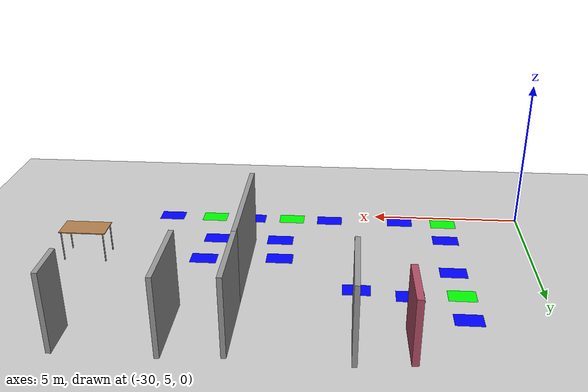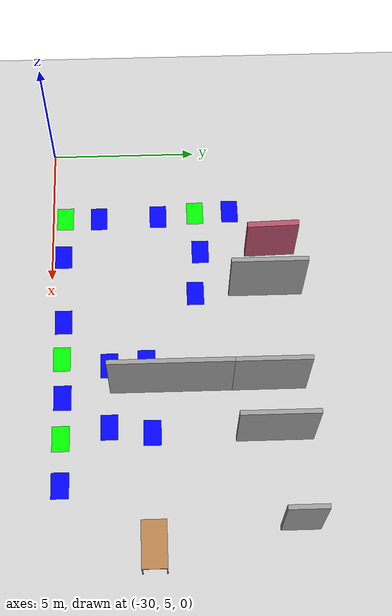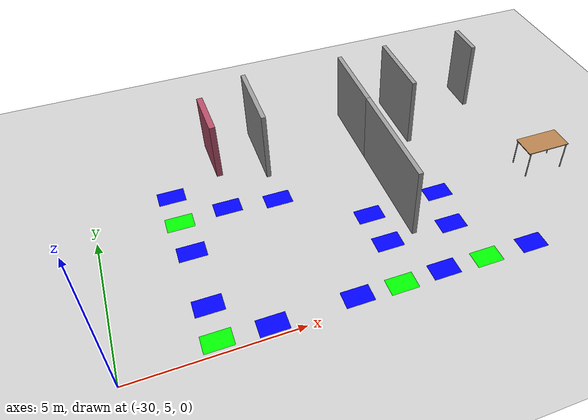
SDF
<sdf version="1.6">
 <world name="default">
  <model name="ground_plane">
   <pose>0 0 0.001 0 -0 0</pose>
   <static>1</static>
   <link name="link">
    <collision name="collision">
     <geometry><plane><normal>0 0 1</normal><size>100 100</size></plane></geometry>
     <surface><friction><ode><mu>100</mu><mu2>50</mu2></ode></friction></surface>
    </collision>
    <visual name="visual">
     <cast_shadows>0</cast_shadows>
     <geometry><plane><normal>0 0 1</normal><size>100 100</size></plane></geometry>
     <material>
      <script><uri>file://media/materials/scripts/gazebo.material</uri><name>Gazebo/Grey</name></script>
     </material>
    </visual>
   </link>
  </model>
  <model name="table_2">
   <static>1</static>
   <link name="link">
    <collision name="surface">
     <pose>0 0 1 0 -0 0</pose>
     <geometry><box><size>1.5 0.8 0.03</size></box></geometry>
     <surface><friction><ode><mu>0.6</mu><mu2>0.6</mu2></ode></friction></surface>
    </collision>
    <visual name="visual1">
     <pose>0 0 1 0 -0 0</pose>
     <geometry><box><size>1.5 0.8 0.03</size></box></geometry>
     <material>
      <script><uri>file://media/materials/scripts/gazebo.material</uri><name>Gazebo/Wood</name></script>
     </material>
    </visual>
    <collision name="front_left_leg">
     <pose>0.68 0.38 0.5 0 -0 0</pose>
     <geometry><cylinder><radius>0.02</radius><length>1</length></cylinder></geometry>
    </collision>
    <visual name="front_left_leg">
     <pose>0.68 0.38 0.5 0 -0 0</pose>
     <geometry><cylinder><radius>0.02</radius><length>1</length></cylinder></geometry>
     <material>
      <script><uri>file://media/materials/scripts/gazebo.material</uri><name>Gazebo/Grey</name></script>
     </material>
    </visual>
    <collision name="front_right_leg">
     <pose>0.68 -0.38 0.5 0 -0 0</pose>
     <geometry><cylinder><radius>0.02</radius><length>1</length></cylinder></geometry>
    </collision>
    <visual name="front_right_leg">
     <pose>0.68 -0.38 0.5 0 -0 0</pose>
     <geometry><cylinder><radius>0.02</radius><length>1</length></cylinder></geometry>
     <material>
      <script><uri>file://media/materials/scripts/gazebo.material</uri><name>Gazebo/Grey</name></script>
     </material>
    </visual>
    <collision name="back_right_leg">
     <pose>-0.68 -0.38 0.5 0 -0 0</pose>
     <geometry><cylinder><radius>0.02</radius><length>1</length></cylinder></geometry>
    </collision>
    <visual name="back_right_leg">
     <pose>-0.68 -0.38 0.5 0 -0 0</pose>
     <geometry><cylinder><radius>0.02</radius><length>1</length></cylinder></geometry>
     <material>
      <script><uri>file://media/materials/scripts/gazebo.material</uri><name>Gazebo/Grey</name></script>
     </material>
    </visual>
    <collision name="back_left_leg">
     <pose>-0.68 0.38 0.5 0 -0 0</pose>
     <geometry><cylinder><radius>0.02</radius><length>1</length></cylinder></geometry>
    </collision>
    <visual name="back_left_leg">
     <pose>-0.68 0.38 0.5 0 -0 0</pose>
     <geometry><cylinder><radius>0.02</radius><length>1</length></cylinder></geometry>
     <material>
      <script><uri>file://media/materials/scripts/gazebo.material</uri><name>Gazebo/Grey</name></script>
     </material>
    </visual>
   </link>
   <pose>-15.5399 8.3596 0.001 0 -0 0</pose>
  </model>
  <model name="intersection_0">
   <link name="link">
    <pose>0 0 0.001 0 -0 0</pose>
    <inertial>
     <mass>0.0352517</mass>
     <inertia>
      <ixx>0.000997067</ixx>
      <ixy>0</ixy>
      <ixz>0</ixz>
      <iyy>0.00220147</iyy>
      <iyz>0</iyz>
      <izz>0.0031692</izz>
     </inertia>
     <pose>0 0 0.001 0 -0 0</pose>
    </inertial>
    <visual name="visual">
     <geometry><box><size>0.862743 0.578289 1e-06</size></box></geometry>
     <material>
      <script><name>Gazebo/Grey</name><uri>file://media/materials/scripts/gazebo.material</uri></script>
      <ambient>0 0 1 1</ambient>
      <diffuse>0 0 1 1</diffuse>
      <specular>0 0 1 1</specular>
      <emissive>0 0 1 1</emissive>
      <shader type="vertex"><normal_map>__default__</normal_map></shader>
     </material>
     <pose>0 0 0.001 0 -0 0</pose>
    </visual>
    <collision name="collision">
     <pose>0 0 0.001 0 -0 0</pose>
     <geometry><box><size>0.862743 0.578289 0.000477</size></box></geometry>
     <surface>
      <friction>
       <ode><mu>1</mu><mu2>1</mu2><fdir1>0 0 0</fdir1><slip1>0</slip1><slip2>0</slip2></ode>
       <torsional>
        <coefficient>1</coefficient>
        <patch_radius>0</patch_radius>
        <surface_radius>0</surface_radius>
        <use_patch_radius>1</use_patch_radius>
        <ode><slip>0</slip></ode>
       </torsional>
      </friction>
      <bounce><restitution_coefficient>0</restitution_coefficient><threshold>1e+06</threshold></bounce>
      <contact>
       <collide_without_contact>0</collide_without_contact>
       <collide_without_contact_bitmask>1</collide_without_contact_bitmask>
       <collide_bitmask>1</collide_bitmask>
       <ode>
        <soft_cfm>0</soft_cfm>
        <soft_erp>0.2</soft_erp>
        <kp>1e+13</kp>
        <kd>1</kd>
        <max_vel>0.01</max_vel>
        <min_depth>0</min_depth>
       </ode>
       <bullet>
        <split_impulse>1</split_impulse>
        <split_impulse_penetration_threshold>-0.01</split_impulse_penetration_threshold>
        <soft_cfm>0</soft_cfm>
        <soft_erp>0.2</soft_erp>
        <kp>1e+13</kp>
        <kd>1</kd>
       </bullet>
      </contact>
     </surface>
    </collision>
   </link>
   <static>1</static>
   <pose>-25.9503 10.1367 0 0 -0 0</pose>
  </model>
  <model name="intersection_1">
   <link name="link">
    <pose>0 0 0.001 0 -0 0</pose>
    <inertial>
     <mass>0.0352517</mass>
     <inertia>
      <ixx>0.000997067</ixx>
      <ixy>0</ixy>
      <ixz>0</ixz>
      <iyy>0.00220147</iyy>
      <iyz>0</iyz>
      <izz>0.0031692</izz>
     </inertia>
     <pose>0 0 0.001 0 -0 0</pose>
    </inertial>
    <visual name="visual">
     <geometry><box><size>0.862743 0.578289 1e-06</size></box></geometry>
     <material>
      <script><name>Gazebo/Grey</name><uri>file://media/materials/scripts/gazebo.material</uri></script>
      <ambient>0 0 1 1</ambient>
      <diffuse>0 0 1 1</diffuse>
      <specular>0 0 1 1</specular>
      <emissive>0 0 1 1</emissive>
      <shader type="vertex"><normal_map>__default__</normal_map></shader>
     </material>
     <pose>0 0 0.001 0 -0 0</pose>
    </visual>
    <collision name="collision">
     <pose>0 0 0.001 0 -0 0</pose>
     <geometry><box><size>0.862743 0.578289 0.000477</size></box></geometry>
     <surface>
      <friction>
       <ode><mu>1</mu><mu2>1</mu2><fdir1>0 0 0</fdir1><slip1>0</slip1><slip2>0</slip2></ode>
       <torsional>
        <coefficient>1</coefficient>
        <patch_radius>0</patch_radius>
        <surface_radius>0</surface_radius>
        <use_patch_radius>1</use_patch_radius>
        <ode><slip>0</slip></ode>
       </torsional>
      </friction>
      <bounce><restitution_coefficient>0</restitution_coefficient><threshold>1e+06</threshold></bounce>
      <contact>
       <collide_without_contact>0</collide_without_contact>
       <collide_without_contact_bitmask>1</collide_without_contact_bitmask>
       <collide_bitmask>1</collide_bitmask>
       <ode>
        <soft_cfm>0</soft_cfm>
        <soft_erp>0.2</soft_erp>
        <kp>1e+13</kp>
        <kd>1</kd>
        <max_vel>0.01</max_vel>
        <min_depth>0</min_depth>
       </ode>
       <bullet>
        <split_impulse>1</split_impulse>
        <split_impulse_penetration_threshold>-0.01</split_impulse_penetration_threshold>
        <soft_cfm>0</soft_cfm>
        <soft_erp>0.2</soft_erp>
        <kp>1e+13</kp>
        <kd>1</kd>
       </bullet>
      </contact>
     </surface>
    </collision>
   </link>
   <static>1</static>
   <pose>-21.7477 6.96498 0 0 -0 0</pose>
  </model>
  <model name="intersection_2">
   <link name="link">
    <pose>0 0 0.001 0 -0 0</pose>
    <inertial>
     <mass>0.0352517</mass>
     <inertia>
      <ixx>0.000997067</ixx>
      <ixy>0</ixy>
      <ixz>0</ixz>
      <iyy>0.00220147</iyy>
      <iyz>0</iyz>
      <izz>0.0031692</izz>
     </inertia>
     <pose>0 0 0.001 0 -0 0</pose>
    </inertial>
    <visual name="visual">
     <geometry><box><size>0.862743 0.578289 1e-06</size></box></geometry>
     <material>
      <script><name>Gazebo/Grey</name><uri>file://media/materials/scripts/gazebo.material</uri></script>
      <ambient>0 0 1 1</ambient>
      <diffuse>0 0 1 1</diffuse>
      <specular>0 0 1 1</specular>
      <emissive>0 0 1 1</emissive>
      <shader type="vertex"><normal_map>__default__</normal_map></shader>
     </material>
     <pose>0 0 0.001 0 -0 0</pose>
    </visual>
    <collision name="collision">
     <pose>0 0 0.001 0 -0 0</pose>
     <geometry><box><size>0.862743 0.578289 0.000477</size></box></geometry>
     <surface>
      <friction>
       <ode><mu>1</mu><mu2>1</mu2><fdir1>0 0 0</fdir1><slip1>0</slip1><slip2>0</slip2></ode>
       <torsional>
        <coefficient>1</coefficient>
        <patch_radius>0</patch_radius>
        <surface_radius>0</surface_radius>
        <use_patch_radius>1</use_patch_radius>
        <ode><slip>0</slip></ode>
       </torsional>
      </friction>
      <bounce><restitution_coefficient>0</restitution_coefficient><threshold>1e+06</threshold></bounce>
      <contact>
       <collide_without_contact>0</collide_without_contact>
       <collide_without_contact_bitmask>1</collide_without_contact_bitmask>
       <collide_bitmask>1</collide_bitmask>
       <ode>
        <soft_cfm>0</soft_cfm>
        <soft_erp>0.2</soft_erp>
        <kp>1e+13</kp>
        <kd>1</kd>
        <max_vel>0.01</max_vel>
        <min_depth>0</min_depth>
       </ode>
       <bullet>
        <split_impulse>1</split_impulse>
        <split_impulse_penetration_threshold>-0.01</split_impulse_penetration_threshold>
        <soft_cfm>0</soft_cfm>
        <soft_erp>0.2</soft_erp>
        <kp>1e+13</kp>
        <kd>1</kd>
       </bullet>
      </contact>
     </surface>
    </collision>
   </link>
   <static>1</static>
   <pose>-25.8621 5.38131 0 0 -0 0</pose>
  </model>
  <model name="intersection_10">
   <link name="link">
    <pose>0 0 0.001 0 -0 0</pose>
    <inertial>
     <mass>0.0352517</mass>
     <inertia>
      <ixx>0.000997067</ixx>
      <ixy>0</ixy>
      <ixz>0</ixz>
      <iyy>0.00220147</iyy>
      <iyz>0</iyz>
      <izz>0.0031692</izz>
     </inertia>
     <pose>0 0 0.001 0 -0 0</pose>
    </inertial>
    <visual name="visual">
     <geometry><box><size>0.862743 0.578289 1e-06</size></box></geometry>
     <material>
      <script><name>Gazebo/Grey</name><uri>file://media/materials/scripts/gazebo.material</uri></script>
      <ambient>0 0 1 1</ambient>
      <diffuse>0 0 1 1</diffuse>
      <specular>0 0 1 1</specular>
      <emissive>0 0 1 1</emissive>
      <shader type="vertex"><normal_map>__default__</normal_map></shader>
     </material>
     <pose>0 0 0.001 0 -0 0</pose>
    </visual>
    <collision name="collision">
     <pose>0 0 0.001 0 -0 0</pose>
     <geometry><box><size>0.862743 0.578289 0.000477</size></box></geometry>
     <surface>
      <friction>
       <ode><mu>1</mu><mu2>1</mu2><fdir1>0 0 0</fdir1><slip1>0</slip1><slip2>0</slip2></ode>
       <torsional>
        <coefficient>1</coefficient>
        <patch_radius>0</patch_radius>
        <surface_radius>0</surface_radius>
        <use_patch_radius>1</use_patch_radius>
        <ode><slip>0</slip></ode>
       </torsional>
      </friction>
      <bounce><restitution_coefficient>0</restitution_coefficient><threshold>1e+06</threshold></bounce>
      <contact>
       <collide_without_contact>0</collide_without_contact>
       <collide_without_contact_bitmask>1</collide_without_contact_bitmask>
       <collide_bitmask>1</collide_bitmask>
       <ode>
        <soft_cfm>0</soft_cfm>
        <soft_erp>0.2</soft_erp>
        <kp>1e+13</kp>
        <kd>1</kd>
        <max_vel>0.01</max_vel>
        <min_depth>0</min_depth>
       </ode>
       <bullet>
        <split_impulse>1</split_impulse>
        <split_impulse_penetration_threshold>-0.01</split_impulse_penetration_threshold>
        <soft_cfm>0</soft_cfm>
        <soft_erp>0.2</soft_erp>
        <kp>1e+13</kp>
        <kd>1</kd>
       </bullet>
      </contact>
     </surface>
    </collision>
   </link>
   <static>1</static>
   <pose>-19.5888 6.96185 0 0 -0 0</pose>
  </model>
  <model name="doorOutside_2_clone">
   <link name="link">
    <pose>0.155539 -0.366282 0.216958 0 -0 0</pose>
    <inertial>
     <mass>2.13199</mass>
     <inertia>
      <ixx>0.452656</ixx>
      <ixy>0</ixy>
      <ixz>0</ixz>
      <iyy>0.796738</iyy>
      <iyz>0</iyz>
      <izz>0.699414</izz>
     </inertia>
     <pose>0 0 0.001 0 -0 0</pose>
    </inertial>
    <visual name="visual">
     <geometry><box><size>1.71368 0.198843 2.05986</size></box></geometry>
     <material>
      <script><name>Gazebo/Grey</name><uri>file://media/materials/scripts/gazebo.material</uri></script>
      <ambient>0.7 0.3 0.4 1</ambient>
      <diffuse>0.7 0.7 0.7 1</diffuse>
      <specular>0.01 0.01 0.01 1</specular>
      <emissive>0 0 0 1</emissive>
      <shader type="vertex"><normal_map>__default__</normal_map></shader>
      <lighting>0</lighting>
     </material>
     <pose>0 0 0.001 0 -0 0</pose>
    </visual>
    <collision name="collision">
     <pose>0 0 0.001 0 -0 0</pose>
     <geometry><box><size>1.71368 0.198843 2.05986</size></box></geometry>
     <surface>
      <friction>
       <ode><mu>1</mu><mu2>1</mu2><fdir1>0 0 0</fdir1><slip1>0</slip1><slip2>0</slip2></ode>
       <torsional>
        <coefficient>1</coefficient>
        <patch_radius>0</patch_radius>
        <surface_radius>0</surface_radius>
        <use_patch_radius>1</use_patch_radius>
        <ode><slip>0</slip></ode>
       </torsional>
      </friction>
      <bounce><restitution_coefficient>0</restitution_coefficient><threshold>1e+06</threshold></bounce>
      <contact>
       <collide_without_contact>0</collide_without_contact>
       <collide_without_contact_bitmask>1</collide_without_contact_bitmask>
       <collide_bitmask>1</collide_bitmask>
       <ode>
        <soft_cfm>0</soft_cfm>
        <soft_erp>0.2</soft_erp>
        <kp>1e+13</kp>
        <kd>1</kd>
        <max_vel>0.01</max_vel>
        <min_depth>0</min_depth>
       </ode>
       <bullet>
        <split_impulse>1</split_impulse>
        <split_impulse_penetration_threshold>-0.01</split_impulse_penetration_threshold>
        <soft_cfm>0</soft_cfm>
        <soft_erp>0.2</soft_erp>
        <kp>1e+13</kp>
        <kd>1</kd>
       </bullet>
      </contact>
     </surface>
    </collision>
   </link>
   <static>0</static>
   <pose>-26.2144 12.3643 0.811972 0 -0 1.5983</pose>
  </model>
  <model name="corridor_1">
   <link name="link">
    <pose>0 0 0.001 0 -0 0</pose>
    <inertial>
     <mass>0.0352517</mass>
     <inertia>
      <ixx>0.00099707</ixx>
      <ixy>0</ixy>
      <ixz>0</ixz>
      <iyy>0.00220147</iyy>
      <iyz>0</iyz>
      <izz>0.0031692</izz>
     </inertia>
     <pose>0 0 0.001 0 -0 0</pose>
    </inertial>
    <visual name="visual">
     <geometry><box><size>0.862743 0.578289 1e-06</size></box></geometry>
     <material>
      <script><name>Gazebo/Grey</name><uri>file://media/materials/scripts/gazebo.material</uri></script>
      <ambient>0 1 0 1</ambient>
      <diffuse>0 1 0 1</diffuse>
      <specular>0 1 0 1</specular>
      <emissive>0 1 0 1</emissive>
      <shader type="vertex"><normal_map>__default__</normal_map></shader>
     </material>
     <pose>0 0 0.001 0 -0 0</pose>
    </visual>
    <collision name="collision">
     <pose>0 0 0.001 0 -0 0</pose>
     <geometry><box><size>0.862743 0.578289 0.000477</size></box></geometry>
     <surface>
      <friction>
       <ode><mu>1</mu><mu2>1</mu2><fdir1>0 0 0</fdir1><slip1>0</slip1><slip2>0</slip2></ode>
       <torsional>
        <coefficient>1</coefficient>
        <patch_radius>0</patch_radius>
        <surface_radius>0</surface_radius>
        <use_patch_radius>1</use_patch_radius>
        <ode><slip>0</slip></ode>
       </torsional>
      </friction>
      <bounce><restitution_coefficient>0</restitution_coefficient><threshold>1e+06</threshold></bounce>
      <contact>
       <collide_without_contact>0</collide_without_contact>
       <collide_without_contact_bitmask>1</collide_without_contact_bitmask>
       <collide_bitmask>1</collide_bitmask>
       <ode>
        <soft_cfm>0</soft_cfm>
        <soft_erp>0.2</soft_erp>
        <kp>1e+13</kp>
        <kd>1</kd>
        <max_vel>0.01</max_vel>
        <min_depth>0</min_depth>
       </ode>
       <bullet>
        <split_impulse>1</split_impulse>
        <split_impulse_penetration_threshold>-0.01</split_impulse_penetration_threshold>
        <soft_cfm>0</soft_cfm>
        <soft_erp>0.2</soft_erp>
        <kp>1e+13</kp>
        <kd>1</kd>
       </bullet>
      </contact>
     </surface>
    </collision>
   </link>
   <static>1</static>
   <pose>-27.5054 9.99894 0 0 -0 0</pose>
  </model>
  <model name="corridor_2">
   <link name="link">
    <pose>0 0 0.001 0 -0 0</pose>
    <inertial>
     <mass>0.0352517</mass>
     <inertia>
      <ixx>0.00099707</ixx>
      <ixy>0</ixy>
      <ixz>0</ixz>
      <iyy>0.00220147</iyy>
      <iyz>0</iyz>
      <izz>0.0031692</izz>
     </inertia>
     <pose>0 0 0.001 0 -0 0</pose>
    </inertial>
    <visual name="visual">
     <geometry><box><size>0.862743 0.578289 1e-06</size></box></geometry>
     <material>
      <script><name>Gazebo/Grey</name><uri>file://media/materials/scripts/gazebo.material</uri></script>
      <ambient>0 1 0 1</ambient>
      <diffuse>0 1 0 1</diffuse>
      <specular>0 1 0 1</specular>
      <emissive>0 1 0 1</emissive>
      <shader type="vertex"><normal_map>__default__</normal_map></shader>
     </material>
     <pose>0 0 0.001 0 -0 0</pose>
    </visual>
    <collision name="collision">
     <pose>0 0 0.001 0 -0 0</pose>
     <geometry><box><size>0.862743 0.578289 0.000477</size></box></geometry>
     <surface>
      <friction>
       <ode><mu>1</mu><mu2>1</mu2><fdir1>0 0 0</fdir1><slip1>0</slip1><slip2>0</slip2></ode>
       <torsional>
        <coefficient>1</coefficient>
        <patch_radius>0</patch_radius>
        <surface_radius>0</surface_radius>
        <use_patch_radius>1</use_patch_radius>
        <ode><slip>0</slip></ode>
       </torsional>
      </friction>
      <bounce><restitution_coefficient>0</restitution_coefficient><threshold>1e+06</threshold></bounce>
      <contact>
       <collide_without_contact>0</collide_without_contact>
       <collide_without_contact_bitmask>1</collide_without_contact_bitmask>
       <collide_bitmask>1</collide_bitmask>
       <ode>
        <soft_cfm>0</soft_cfm>
        <soft_erp>0.2</soft_erp>
        <kp>1e+13</kp>
        <kd>1</kd>
        <max_vel>0.01</max_vel>
        <min_depth>0</min_depth>
       </ode>
       <bullet>
        <split_impulse>1</split_impulse>
        <split_impulse_penetration_threshold>-0.01</split_impulse_penetration_threshold>
        <soft_cfm>0</soft_cfm>
        <soft_erp>0.2</soft_erp>
        <kp>1e+13</kp>
        <kd>1</kd>
       </bullet>
      </contact>
     </surface>
    </collision>
   </link>
   <static>1</static>
   <pose>-27.3839 5.42148 0 0 -0 0</pose>
  </model>
  <model name="corridor_20">
   <link name="link">
    <pose>0 0 0.001 0 -0 0</pose>
    <inertial>
     <mass>0.0352517</mass>
     <inertia>
      <ixx>0.00099707</ixx>
      <ixy>0</ixy>
      <ixz>0</ixz>
      <iyy>0.00220147</iyy>
      <iyz>0</iyz>
      <izz>0.0031692</izz>
     </inertia>
     <pose>0 0 0.001 0 -0 0</pose>
    </inertial>
    <visual name="visual">
     <geometry><box><size>0.862743 0.578289 1e-06</size></box></geometry>
     <material>
      <script><name>Gazebo/Grey</name><uri>file://media/materials/scripts/gazebo.material</uri></script>
      <ambient>0 1 0 1</ambient>
      <diffuse>0 1 0 1</diffuse>
      <specular>0 1 0 1</specular>
      <emissive>0 1 0 1</emissive>
      <shader type="vertex"><normal_map>__default__</normal_map></shader>
     </material>
     <pose>0 0 0.001 0 -0 0</pose>
    </visual>
    <collision name="collision">
     <pose>0 0 0.001 0 -0 0</pose>
     <geometry><box><size>0.862743 0.578289 0.000477</size></box></geometry>
     <surface>
      <friction>
       <ode><mu>1</mu><mu2>1</mu2><fdir1>0 0 0</fdir1><slip1>0</slip1><slip2>0</slip2></ode>
       <torsional>
        <coefficient>1</coefficient>
        <patch_radius>0</patch_radius>
        <surface_radius>0</surface_radius>
        <use_patch_radius>1</use_patch_radius>
        <ode><slip>0</slip></ode>
       </torsional>
      </friction>
      <bounce><restitution_coefficient>0</restitution_coefficient><threshold>1e+06</threshold></bounce>
      <contact>
       <collide_without_contact>0</collide_without_contact>
       <collide_without_contact_bitmask>1</collide_without_contact_bitmask>
       <collide_bitmask>1</collide_bitmask>
       <ode>
        <soft_cfm>0</soft_cfm>
        <soft_erp>0.2</soft_erp>
        <kp>1e+13</kp>
        <kd>1</kd>
        <max_vel>0.01</max_vel>
        <min_depth>0</min_depth>
       </ode>
       <bullet>
        <split_impulse>1</split_impulse>
        <split_impulse_penetration_threshold>-0.01</split_impulse_penetration_threshold>
        <soft_cfm>0</soft_cfm>
        <soft_erp>0.2</soft_erp>
        <kp>1e+13</kp>
        <kd>1</kd>
       </bullet>
      </contact>
     </surface>
    </collision>
   </link>
   <static>1</static>
   <pose>-19.241 5.38665 0 0 -0 0</pose>
  </model>
  <model name="corridor_21">
   <link name="link">
    <pose>0 0 0.001 0 -0 0</pose>
    <inertial>
     <mass>0.0352517</mass>
     <inertia>
      <ixx>0.00099707</ixx>
      <ixy>0</ixy>
      <ixz>0</ixz>
      <iyy>0.00220147</iyy>
      <iyz>0</iyz>
      <izz>0.0031692</izz>
     </inertia>
     <pose>0 0 0.001 0 -0 0</pose>
    </inertial>
    <visual name="visual">
     <geometry><box><size>0.862743 0.578289 1e-06</size></box></geometry>
     <material>
      <script><name>Gazebo/Grey</name><uri>file://media/materials/scripts/gazebo.material</uri></script>
      <ambient>0 1 0 1</ambient>
      <diffuse>0 1 0 1</diffuse>
      <specular>0 1 0 1</specular>
      <emissive>0 1 0 1</emissive>
      <shader type="vertex"><normal_map>__default__</normal_map></shader>
     </material>
     <pose>0 0 0.001 0 -0 0</pose>
    </visual>
    <collision name="collision">
     <pose>0 0 0.001 0 -0 0</pose>
     <geometry><box><size>0.862743 0.578289 0.000477</size></box></geometry>
     <surface>
      <friction>
       <ode><mu>1</mu><mu2>1</mu2><fdir1>0 0 0</fdir1><slip1>0</slip1><slip2>0</slip2></ode>
       <torsional>
        <coefficient>1</coefficient>
        <patch_radius>0</patch_radius>
        <surface_radius>0</surface_radius>
        <use_patch_radius>1</use_patch_radius>
        <ode><slip>0</slip></ode>
       </torsional>
      </friction>
      <bounce><restitution_coefficient>0</restitution_coefficient><threshold>1e+06</threshold></bounce>
      <contact>
       <collide_without_contact>0</collide_without_contact>
       <collide_without_contact_bitmask>1</collide_without_contact_bitmask>
       <collide_bitmask>1</collide_bitmask>
       <ode>
        <soft_cfm>0</soft_cfm>
        <soft_erp>0.2</soft_erp>
        <kp>1e+13</kp>
        <kd>1</kd>
        <max_vel>0.01</max_vel>
        <min_depth>0</min_depth>
       </ode>
       <bullet>
        <split_impulse>1</split_impulse>
        <split_impulse_penetration_threshold>-0.01</split_impulse_penetration_threshold>
        <soft_cfm>0</soft_cfm>
        <soft_erp>0.2</soft_erp>
        <kp>1e+13</kp>
        <kd>1</kd>
       </bullet>
      </contact>
     </surface>
    </collision>
   </link>
   <static>1</static>
   <pose>-22.0183 5.38077 0 0 -0 0</pose>
  </model>
  <model name="intersection_28">
   <link name="link">
    <pose>0 0 0.001 0 -0 0</pose>
    <inertial>
     <mass>0.0352517</mass>
     <inertia>
      <ixx>0.000997067</ixx>
      <ixy>0</ixy>
      <ixz>0</ixz>
      <iyy>0.00220147</iyy>
      <iyz>0</iyz>
      <izz>0.0031692</izz>
     </inertia>
     <pose>0 0 0.001 0 -0 0</pose>
    </inertial>
    <visual name="visual">
     <geometry><box><size>0.862743 0.578289 1e-06</size></box></geometry>
     <material>
      <script><name>Gazebo/Grey</name><uri>file://media/materials/scripts/gazebo.material</uri></script>
      <ambient>0 0 1 1</ambient>
      <diffuse>0 0 1 1</diffuse>
      <specular>0 0 1 1</specular>
      <emissive>0 0 1 1</emissive>
      <shader type="vertex"><normal_map>__default__</normal_map></shader>
     </material>
     <pose>0 0 0.001 0 -0 0</pose>
    </visual>
    <collision name="collision">
     <pose>0 0 0.001 0 -0 0</pose>
     <geometry><box><size>0.862743 0.578289 0.000477</size></box></geometry>
     <surface>
      <friction>
       <ode><mu>1</mu><mu2>1</mu2><fdir1>0 0 0</fdir1><slip1>0</slip1><slip2>0</slip2></ode>
       <torsional>
        <coefficient>1</coefficient>
        <patch_radius>0</patch_radius>
        <surface_radius>0</surface_radius>
        <use_patch_radius>1</use_patch_radius>
        <ode><slip>0</slip></ode>
       </torsional>
      </friction>
      <bounce><restitution_coefficient>0</restitution_coefficient><threshold>1e+06</threshold></bounce>
      <contact>
       <collide_without_contact>0</collide_without_contact>
       <collide_without_contact_bitmask>1</collide_without_contact_bitmask>
       <collide_bitmask>1</collide_bitmask>
       <ode>
        <soft_cfm>0</soft_cfm>
        <soft_erp>0.2</soft_erp>
        <kp>1e+13</kp>
        <kd>1</kd>
        <max_vel>0.01</max_vel>
        <min_depth>0</min_depth>
       </ode>
       <bullet>
        <split_impulse>1</split_impulse>
        <split_impulse_penetration_threshold>-0.01</split_impulse_penetration_threshold>
        <soft_cfm>0</soft_cfm>
        <soft_erp>0.2</soft_erp>
        <kp>1e+13</kp>
        <kd>1</kd>
       </bullet>
      </contact>
     </surface>
    </collision>
   </link>
   <static>1</static>
   <pose>-27.5459 11.2292 0 0 -0 0</pose>
  </model>
  <model name="intersection_30">
   <link name="link">
    <pose>0 0 0.001 0 -0 0</pose>
    <inertial>
     <mass>0.0352517</mass>
     <inertia>
      <ixx>0.000997067</ixx>
      <ixy>0</ixy>
      <ixz>0</ixz>
      <iyy>0.00220147</iyy>
      <iyz>0</iyz>
      <izz>0.0031692</izz>
     </inertia>
     <pose>0 0 0.001 0 -0 0</pose>
    </inertial>
    <visual name="visual">
     <geometry><box><size>0.862743 0.578289 1e-06</size></box></geometry>
     <material>
      <script><name>Gazebo/Grey</name><uri>file://media/materials/scripts/gazebo.material</uri></script>
      <ambient>0 0 1 1</ambient>
      <diffuse>0 0 1 1</diffuse>
      <specular>0 0 1 1</specular>
      <emissive>0 0 1 1</emissive>
      <shader type="vertex"><normal_map>__default__</normal_map></shader>
     </material>
     <pose>0 0 0.001 0 -0 0</pose>
    </visual>
    <collision name="collision">
     <pose>0 0 0.001 0 -0 0</pose>
     <geometry><box><size>0.862743 0.578289 0.000477</size></box></geometry>
     <surface>
      <friction>
       <ode><mu>1</mu><mu2>1</mu2><fdir1>0 0 0</fdir1><slip1>0</slip1><slip2>0</slip2></ode>
       <torsional>
        <coefficient>1</coefficient>
        <patch_radius>0</patch_radius>
        <surface_radius>0</surface_radius>
        <use_patch_radius>1</use_patch_radius>
        <ode><slip>0</slip></ode>
       </torsional>
      </friction>
      <bounce><restitution_coefficient>0</restitution_coefficient><threshold>1e+06</threshold></bounce>
      <contact>
       <collide_without_contact>0</collide_without_contact>
       <collide_without_contact_bitmask>1</collide_without_contact_bitmask>
       <collide_bitmask>1</collide_bitmask>
       <ode>
        <soft_cfm>0</soft_cfm>
        <soft_erp>0.2</soft_erp>
        <kp>1e+13</kp>
        <kd>1</kd>
        <max_vel>0.01</max_vel>
        <min_depth>0</min_depth>
       </ode>
       <bullet>
        <split_impulse>1</split_impulse>
        <split_impulse_penetration_threshold>-0.01</split_impulse_penetration_threshold>
        <soft_cfm>0</soft_cfm>
        <soft_erp>0.2</soft_erp>
        <kp>1e+13</kp>
        <kd>1</kd>
       </bullet>
      </contact>
     </surface>
    </collision>
   </link>
   <static>1</static>
   <pose>-27.3948 8.69379 0 0 -0 0</pose>
  </model>
  <model name="intersection_34">
   <link name="link">
    <pose>0 0 0.001 0 -0 0</pose>
    <inertial>
     <mass>0.0352517</mass>
     <inertia>
      <ixx>0.000997067</ixx>
      <ixy>0</ixy>
      <ixz>0</ixz>
      <iyy>0.00220147</iyy>
      <iyz>0</iyz>
      <izz>0.0031692</izz>
     </inertia>
     <pose>0 0 0.001 0 -0 0</pose>
    </inertial>
    <visual name="visual">
     <geometry><box><size>0.862743 0.578289 1e-06</size></box></geometry>
     <material>
      <script><name>Gazebo/Grey</name><uri>file://media/materials/scripts/gazebo.material</uri></script>
      <ambient>0 0 1 1</ambient>
      <diffuse>0 0 1 1</diffuse>
      <specular>0 0 1 1</specular>
      <emissive>0 0 1 1</emissive>
      <shader type="vertex"><normal_map>__default__</normal_map></shader>
     </material>
     <pose>0 0 0.001 0 -0 0</pose>
    </visual>
    <collision name="collision">
     <pose>0 0 0.001 0 -0 0</pose>
     <geometry><box><size>0.862743 0.578289 0.000477</size></box></geometry>
     <surface>
      <friction>
       <ode><mu>1</mu><mu2>1</mu2><fdir1>0 0 0</fdir1><slip1>0</slip1><slip2>0</slip2></ode>
       <torsional>
        <coefficient>1</coefficient>
        <patch_radius>0</patch_radius>
        <surface_radius>0</surface_radius>
        <use_patch_radius>1</use_patch_radius>
        <ode><slip>0</slip></ode>
       </torsional>
      </friction>
      <bounce><restitution_coefficient>0</restitution_coefficient><threshold>1e+06</threshold></bounce>
      <contact>
       <collide_without_contact>0</collide_without_contact>
       <collide_without_contact_bitmask>1</collide_without_contact_bitmask>
       <collide_bitmask>1</collide_bitmask>
       <ode>
        <soft_cfm>0</soft_cfm>
        <soft_erp>0.2</soft_erp>
        <kp>1e+13</kp>
        <kd>1</kd>
        <max_vel>0.01</max_vel>
        <min_depth>0</min_depth>
       </ode>
       <bullet>
        <split_impulse>1</split_impulse>
        <split_impulse_penetration_threshold>-0.01</split_impulse_penetration_threshold>
        <soft_cfm>0</soft_cfm>
        <soft_erp>0.2</soft_erp>
        <kp>1e+13</kp>
        <kd>1</kd>
       </bullet>
      </contact>
     </surface>
    </collision>
   </link>
   <static>1</static>
   <pose>-27.3587 6.61009 0 0 -0 0</pose>
  </model>
  <model name="intersection_35">
   <link name="link">
    <pose>0 0 0.001 0 -0 0</pose>
    <inertial>
     <mass>0.0352517</mass>
     <inertia>
      <ixx>0.000997067</ixx>
      <ixy>0</ixy>
      <ixz>0</ixz>
      <iyy>0.00220147</iyy>
      <iyz>0</iyz>
      <izz>0.0031692</izz>
     </inertia>
     <pose>0 0 0.001 0 -0 0</pose>
    </inertial>
    <visual name="visual">
     <geometry><box><size>0.862743 0.578289 1e-06</size></box></geometry>
     <material>
      <script><name>Gazebo/Grey</name><uri>file://media/materials/scripts/gazebo.material</uri></script>
      <ambient>0 0 1 1</ambient>
      <diffuse>0 0 1 1</diffuse>
      <specular>0 0 1 1</specular>
      <emissive>0 0 1 1</emissive>
      <shader type="vertex"><normal_map>__default__</normal_map></shader>
     </material>
     <pose>0 0 0.001 0 -0 0</pose>
    </visual>
    <collision name="collision">
     <pose>0 0 0.001 0 -0 0</pose>
     <geometry><box><size>0.862743 0.578289 0.000477</size></box></geometry>
     <surface>
      <friction>
       <ode><mu>1</mu><mu2>1</mu2><fdir1>0 0 0</fdir1><slip1>0</slip1><slip2>0</slip2></ode>
       <torsional>
        <coefficient>1</coefficient>
        <patch_radius>0</patch_radius>
        <surface_radius>0</surface_radius>
        <use_patch_radius>1</use_patch_radius>
        <ode><slip>0</slip></ode>
       </torsional>
      </friction>
      <bounce><restitution_coefficient>0</restitution_coefficient><threshold>1e+06</threshold></bounce>
      <contact>
       <collide_without_contact>0</collide_without_contact>
       <collide_without_contact_bitmask>1</collide_without_contact_bitmask>
       <collide_bitmask>1</collide_bitmask>
       <ode>
        <soft_cfm>0</soft_cfm>
        <soft_erp>0.2</soft_erp>
        <kp>1e+13</kp>
        <kd>1</kd>
        <max_vel>0.01</max_vel>
        <min_depth>0</min_depth>
       </ode>
       <bullet>
        <split_impulse>1</split_impulse>
        <split_impulse_penetration_threshold>-0.01</split_impulse_penetration_threshold>
        <soft_cfm>0</soft_cfm>
        <soft_erp>0.2</soft_erp>
        <kp>1e+13</kp>
        <kd>1</kd>
       </bullet>
      </contact>
     </surface>
    </collision>
   </link>
   <static>1</static>
   <pose>-23.3689 5.41922 0 0 -0 0</pose>
  </model>
  <model name="intersection_36">
   <link name="link">
    <pose>0 0 0.001 0 -0 0</pose>
    <inertial>
     <mass>0.0352517</mass>
     <inertia>
      <ixx>0.000997067</ixx>
      <ixy>0</ixy>
      <ixz>0</ixz>
      <iyy>0.00220147</iyy>
      <iyz>0</iyz>
      <izz>0.0031692</izz>
     </inertia>
     <pose>0 0 0.001 0 -0 0</pose>
    </inertial>
    <visual name="visual">
     <geometry><box><size>0.862743 0.578289 1e-06</size></box></geometry>
     <material>
      <script><name>Gazebo/Grey</name><uri>file://media/materials/scripts/gazebo.material</uri></script>
      <ambient>0 0 1 1</ambient>
      <diffuse>0 0 1 1</diffuse>
      <specular>0 0 1 1</specular>
      <emissive>0 0 1 1</emissive>
      <shader type="vertex"><normal_map>__default__</normal_map></shader>
     </material>
     <pose>0 0 0.001 0 -0 0</pose>
    </visual>
    <collision name="collision">
     <pose>0 0 0.001 0 -0 0</pose>
     <geometry><box><size>0.862743 0.578289 0.000477</size></box></geometry>
     <surface>
      <friction>
       <ode><mu>1</mu><mu2>1</mu2><fdir1>0 0 0</fdir1><slip1>0</slip1><slip2>0</slip2></ode>
       <torsional>
        <coefficient>1</coefficient>
        <patch_radius>0</patch_radius>
        <surface_radius>0</surface_radius>
        <use_patch_radius>1</use_patch_radius>
        <ode><slip>0</slip></ode>
       </torsional>
      </friction>
      <bounce><restitution_coefficient>0</restitution_coefficient><threshold>1e+06</threshold></bounce>
      <contact>
       <collide_without_contact>0</collide_without_contact>
       <collide_without_contact_bitmask>1</collide_without_contact_bitmask>
       <collide_bitmask>1</collide_bitmask>
       <ode>
        <soft_cfm>0</soft_cfm>
        <soft_erp>0.2</soft_erp>
        <kp>1e+13</kp>
        <kd>1</kd>
        <max_vel>0.01</max_vel>
        <min_depth>0</min_depth>
       </ode>
       <bullet>
        <split_impulse>1</split_impulse>
        <split_impulse_penetration_threshold>-0.01</split_impulse_penetration_threshold>
        <soft_cfm>0</soft_cfm>
        <soft_erp>0.2</soft_erp>
        <kp>1e+13</kp>
        <kd>1</kd>
       </bullet>
      </contact>
     </surface>
    </collision>
   </link>
   <static>1</static>
   <pose>-20.643 5.42424 0 0 -0 0</pose>
  </model>
  <model name="intersection_39">
   <link name="link">
    <pose>0 0 0.001 0 -0 0</pose>
    <inertial>
     <mass>0.0352517</mass>
     <inertia>
      <ixx>0.000997067</ixx>
      <ixy>0</ixy>
      <ixz>0</ixz>
      <iyy>0.00220147</iyy>
      <iyz>0</iyz>
      <izz>0.0031692</izz>
     </inertia>
     <pose>0 0 0.001 0 -0 0</pose>
    </inertial>
    <visual name="visual">
     <geometry><box><size>0.862743 0.578289 1e-06</size></box></geometry>
     <material>
      <script><name>Gazebo/Grey</name><uri>file://media/materials/scripts/gazebo.material</uri></script>
      <ambient>0 0 1 1</ambient>
      <diffuse>0 0 1 1</diffuse>
      <specular>0 0 1 1</specular>
      <emissive>0 0 1 1</emissive>
      <shader type="vertex"><normal_map>__default__</normal_map></shader>
     </material>
     <pose>0 0 0.001 0 -0 0</pose>
    </visual>
    <collision name="collision">
     <pose>0 0 0.001 0 -0 0</pose>
     <geometry><box><size>0.862743 0.578289 0.000477</size></box></geometry>
     <surface>
      <friction>
       <ode><mu>1</mu><mu2>1</mu2><fdir1>0 0 0</fdir1><slip1>0</slip1><slip2>0</slip2></ode>
       <torsional>
        <coefficient>1</coefficient>
        <patch_radius>0</patch_radius>
        <surface_radius>0</surface_radius>
        <use_patch_radius>1</use_patch_radius>
        <ode><slip>0</slip></ode>
       </torsional>
      </friction>
      <bounce><restitution_coefficient>0</restitution_coefficient><threshold>1e+06</threshold></bounce>
      <contact>
       <collide_without_contact>0</collide_without_contact>
       <collide_without_contact_bitmask>1</collide_without_contact_bitmask>
       <collide_bitmask>1</collide_bitmask>
       <ode>
        <soft_cfm>0</soft_cfm>
        <soft_erp>0.2</soft_erp>
        <kp>1e+13</kp>
        <kd>1</kd>
        <max_vel>0.01</max_vel>
        <min_depth>0</min_depth>
       </ode>
       <bullet>
        <split_impulse>1</split_impulse>
        <split_impulse_penetration_threshold>-0.01</split_impulse_penetration_threshold>
        <soft_cfm>0</soft_cfm>
        <soft_erp>0.2</soft_erp>
        <kp>1e+13</kp>
        <kd>1</kd>
       </bullet>
      </contact>
     </surface>
    </collision>
   </link>
   <static>1</static>
   <pose>-17.6923 5.39098 0 0 -0 0</pose>
  </model>
  <model name="Se1_cut">
   <pose>3.62364 13.9276 0 0 -0 0</pose>
   <link name="Wall_18">
    <collision name="Wall_18_Collision">
     <geometry><box><size>2.5 0.15 2.5</size></box></geometry>
     <pose>0 0 1.25 0 -0 0</pose>
    </collision>
    <visual name="Wall_18_Visual">
     <pose>0 0 1.25 0 -0 0</pose>
     <geometry><box><size>2.5 0.15 2.5</size></box></geometry>
     <material>
      <script><uri>file://media/materials/scripts/gazebo.material</uri><name>Gazebo/Grey</name></script>
      <ambient>1 1 1 1</ambient>
     </material>
    </visual>
    <pose>-27.916 -1.63307 0 0 0 -1.5708</pose>
   </link>
   <link name="Wall_20">
    <collision name="Wall_20_Collision">
     <geometry><box><size>2.57604 0.15 2.5</size></box></geometry>
     <pose>0 0 1.25 0 -0 0</pose>
    </collision>
    <visual name="Wall_20_Visual">
     <pose>0 0 1.25 0 -0 0</pose>
     <geometry><box><size>2.57604 0.15 2.5</size></box></geometry>
     <material>
      <script><uri>file://media/materials/scripts/gazebo.material</uri><name>Gazebo/Grey</name></script>
      <ambient>1 1 1 1</ambient>
     </material>
    </visual>
    <pose>-24.4704 -1.79415 0 0 0 -1.5708</pose>
   </link>
   <link name="Wall_23">
    <collision name="Wall_23_Collision">
     <geometry><box><size>2.5 0.15 2.5</size></box></geometry>
     <pose>0 0 1.25 0 -0 0</pose>
    </collision>
    <visual name="Wall_23_Visual">
     <pose>0 0 1.25 0 -0 0</pose>
     <geometry><box><size>2.5 0.15 2.5</size></box></geometry>
     <material>
      <script><uri>file://media/materials/scripts/gazebo.material</uri><name>Gazebo/Grey</name></script>
      <ambient>1 1 1 1</ambient>
     </material>
    </visual>
    <pose>-22.711 -1.63352 0 0 0 -1.5708</pose>
   </link>
   <link name="Wall_25">
    <collision name="Wall_25_Collision">
     <geometry><box><size>1.25 0.15 2.5</size></box></geometry>
     <pose>0 0 1.25 0 -0 0</pose>
    </collision>
    <visual name="Wall_25_Visual">
     <pose>0 0 1.25 0 -0 0</pose>
     <geometry><box><size>1.25 0.15 2.5</size></box></geometry>
     <material>
      <script><uri>file://media/materials/scripts/gazebo.material</uri><name>Gazebo/Grey</name></script>
      <ambient>1 1 1 1</ambient>
     </material>
    </visual>
    <pose>-19.781 -1.01852 0 0 0 -1.5708</pose>
   </link>
   <link name="Wall_87">
    <collision name="Wall_87_Collision">
     <geometry><box><size>4 0.15 2.5</size></box></geometry>
     <pose>0 0 1.25 0 -0 0</pose>
    </collision>
    <visual name="Wall_87_Visual">
     <pose>0 0 1.25 0 -0 0</pose>
     <geometry><box><size>4 0.15 2.5</size></box></geometry>
     <material>
      <script><uri>file://media/materials/scripts/gazebo.material</uri><name>Gazebo/Grey</name></script>
      <ambient>1 1 1 1</ambient>
     </material>
    </visual>
    <pose>-24.4704 -4.93217 0 0 0 -1.5708</pose>
   </link>
   <static>1</static>
  </model>
  <model name="intersection_33_clone_12">
   <link name="link">
    <pose>0 0 0.001 0 -0 0</pose>
    <inertial>
     <mass>0.0352517</mass>
     <inertia>
      <ixx>0.000997067</ixx>
      <ixy>0</ixy>
      <ixz>0</ixz>
      <iyy>0.00220147</iyy>
      <iyz>0</iyz>
      <izz>0.0031692</izz>
     </inertia>
     <pose>0 0 0.001 0 -0 0</pose>
    </inertial>
    <visual name="visual">
     <geometry><box><size>0.862743 0.578289 1e-06</size></box></geometry>
     <material>
      <script><name>Gazebo/Grey</name><uri>file://media/materials/scripts/gazebo.material</uri></script>
      <ambient>0 0 1 1</ambient>
      <diffuse>0 0 1 1</diffuse>
      <specular>0 0 1 1</specular>
      <emissive>0 0 1 1</emissive>
      <shader type="vertex"><normal_map>__default__</normal_map></shader>
     </material>
     <pose>0 0 0.001 0 -0 0</pose>
    </visual>
    <collision name="collision">
     <pose>0 0 0.001 0 -0 0</pose>
     <geometry><box><size>0.862743 0.578289 0.000477</size></box></geometry>
     <surface>
      <friction>
       <ode><mu>1</mu><mu2>1</mu2><fdir1>0 0 0</fdir1><slip1>0</slip1><slip2>0</slip2></ode>
       <torsional>
        <coefficient>1</coefficient>
        <patch_radius>0</patch_radius>
        <surface_radius>0</surface_radius>
        <use_patch_radius>1</use_patch_radius>
        <ode><slip>0</slip></ode>
       </torsional>
      </friction>
      <bounce><restitution_coefficient>0</restitution_coefficient><threshold>1e+06</threshold></bounce>
      <contact>
       <collide_without_contact>0</collide_without_contact>
       <collide_without_contact_bitmask>1</collide_without_contact_bitmask>
       <collide_bitmask>1</collide_bitmask>
       <ode>
        <soft_cfm>0</soft_cfm>
        <soft_erp>0.2</soft_erp>
        <kp>1e+13</kp>
        <kd>1</kd>
        <max_vel>0.01</max_vel>
        <min_depth>0</min_depth>
       </ode>
       <bullet>
        <split_impulse>1</split_impulse>
        <split_impulse_penetration_threshold>-0.01</split_impulse_penetration_threshold>
        <soft_cfm>0</soft_cfm>
        <soft_erp>0.2</soft_erp>
        <kp>1e+13</kp>
        <kd>1</kd>
       </bullet>
      </contact>
     </surface>
    </collision>
   </link>
   <static>1</static>
   <pose>-19.3672 8.35621 0.011897 0 -0 0</pose>
  </model>
  <model name="intersection_33_clone_13">
   <link name="link">
    <pose>0 0 0.001 0 -0 0</pose>
    <inertial>
     <mass>0.0352517</mass>
     <inertia>
      <ixx>0.000997067</ixx>
      <ixy>0</ixy>
      <ixz>0</ixz>
      <iyy>0.00220147</iyy>
      <iyz>0</iyz>
      <izz>0.0031692</izz>
     </inertia>
     <pose>0 0 0.001 0 -0 0</pose>
    </inertial>
    <visual name="visual">
     <geometry><box><size>0.862743 0.578289 1e-06</size></box></geometry>
     <material>
      <script><name>Gazebo/Grey</name><uri>file://media/materials/scripts/gazebo.material</uri></script>
      <ambient>0 0 1 1</ambient>
      <diffuse>0 0 1 1</diffuse>
      <specular>0 0 1 1</specular>
      <emissive>0 0 1 1</emissive>
      <shader type="vertex"><normal_map>__default__</normal_map></shader>
     </material>
     <pose>0 0 0.001 0 -0 0</pose>
    </visual>
    <collision name="collision">
     <pose>0 0 0.001 0 -0 0</pose>
     <geometry><box><size>0.862743 0.578289 0.000477</size></box></geometry>
     <surface>
      <friction>
       <ode><mu>1</mu><mu2>1</mu2><fdir1>0 0 0</fdir1><slip1>0</slip1><slip2>0</slip2></ode>
       <torsional>
        <coefficient>1</coefficient>
        <patch_radius>0</patch_radius>
        <surface_radius>0</surface_radius>
        <use_patch_radius>1</use_patch_radius>
        <ode><slip>0</slip></ode>
       </torsional>
      </friction>
      <bounce><restitution_coefficient>0</restitution_coefficient><threshold>1e+06</threshold></bounce>
      <contact>
       <collide_without_contact>0</collide_without_contact>
       <collide_without_contact_bitmask>1</collide_without_contact_bitmask>
       <collide_bitmask>1</collide_bitmask>
       <ode>
        <soft_cfm>0</soft_cfm>
        <soft_erp>0.2</soft_erp>
        <kp>1e+13</kp>
        <kd>1</kd>
        <max_vel>0.01</max_vel>
        <min_depth>0</min_depth>
       </ode>
       <bullet>
        <split_impulse>1</split_impulse>
        <split_impulse_penetration_threshold>-0.01</split_impulse_penetration_threshold>
        <soft_cfm>0</soft_cfm>
        <soft_erp>0.2</soft_erp>
        <kp>1e+13</kp>
        <kd>1</kd>
       </bullet>
      </contact>
     </surface>
    </collision>
   </link>
   <static>1</static>
   <pose>-21.8376 8.20282 0.011897 0 -0 0</pose>
  </model>
  <model name="intersection_33_clone_14">
   <link name="link">
    <pose>0 0 0.001 0 -0 0</pose>
    <inertial>
     <mass>0.0352517</mass>
     <inertia>
      <ixx>0.000997067</ixx>
      <ixy>0</ixy>
      <ixz>0</ixz>
      <iyy>0.00220147</iyy>
      <iyz>0</iyz>
      <izz>0.0031692</izz>
     </inertia>
     <pose>0 0 0.001 0 -0 0</pose>
    </inertial>
    <visual name="visual">
     <geometry><box><size>0.862743 0.578289 1e-06</size></box></geometry>
     <material>
      <script><name>Gazebo/Grey</name><uri>file://media/materials/scripts/gazebo.material</uri></script>
      <ambient>0 0 1 1</ambient>
      <diffuse>0 0 1 1</diffuse>
      <specular>0 0 1 1</specular>
      <emissive>0 0 1 1</emissive>
      <shader type="vertex"><normal_map>__default__</normal_map></shader>
     </material>
     <pose>0 0 0.001 0 -0 0</pose>
    </visual>
    <collision name="collision">
     <pose>0 0 0.001 0 -0 0</pose>
     <geometry><box><size>0.862743 0.578289 0.000477</size></box></geometry>
     <surface>
      <friction>
       <ode><mu>1</mu><mu2>1</mu2><fdir1>0 0 0</fdir1><slip1>0</slip1><slip2>0</slip2></ode>
       <torsional>
        <coefficient>1</coefficient>
        <patch_radius>0</patch_radius>
        <surface_radius>0</surface_radius>
        <use_patch_radius>1</use_patch_radius>
        <ode><slip>0</slip></ode>
       </torsional>
      </friction>
      <bounce><restitution_coefficient>0</restitution_coefficient><threshold>1e+06</threshold></bounce>
      <contact>
       <collide_without_contact>0</collide_without_contact>
       <collide_without_contact_bitmask>1</collide_without_contact_bitmask>
       <collide_bitmask>1</collide_bitmask>
       <ode>
        <soft_cfm>0</soft_cfm>
        <soft_erp>0.2</soft_erp>
        <kp>1e+13</kp>
        <kd>1</kd>
        <max_vel>0.01</max_vel>
        <min_depth>0</min_depth>
       </ode>
       <bullet>
        <split_impulse>1</split_impulse>
        <split_impulse_penetration_threshold>-0.01</split_impulse_penetration_threshold>
        <soft_cfm>0</soft_cfm>
        <soft_erp>0.2</soft_erp>
        <kp>1e+13</kp>
        <kd>1</kd>
       </bullet>
      </contact>
     </surface>
    </collision>
   </link>
   <static>1</static>
   <pose>-24.3382 9.91157 0.011897 0 -0 0</pose>
  </model>
 </world>
</sdf>
